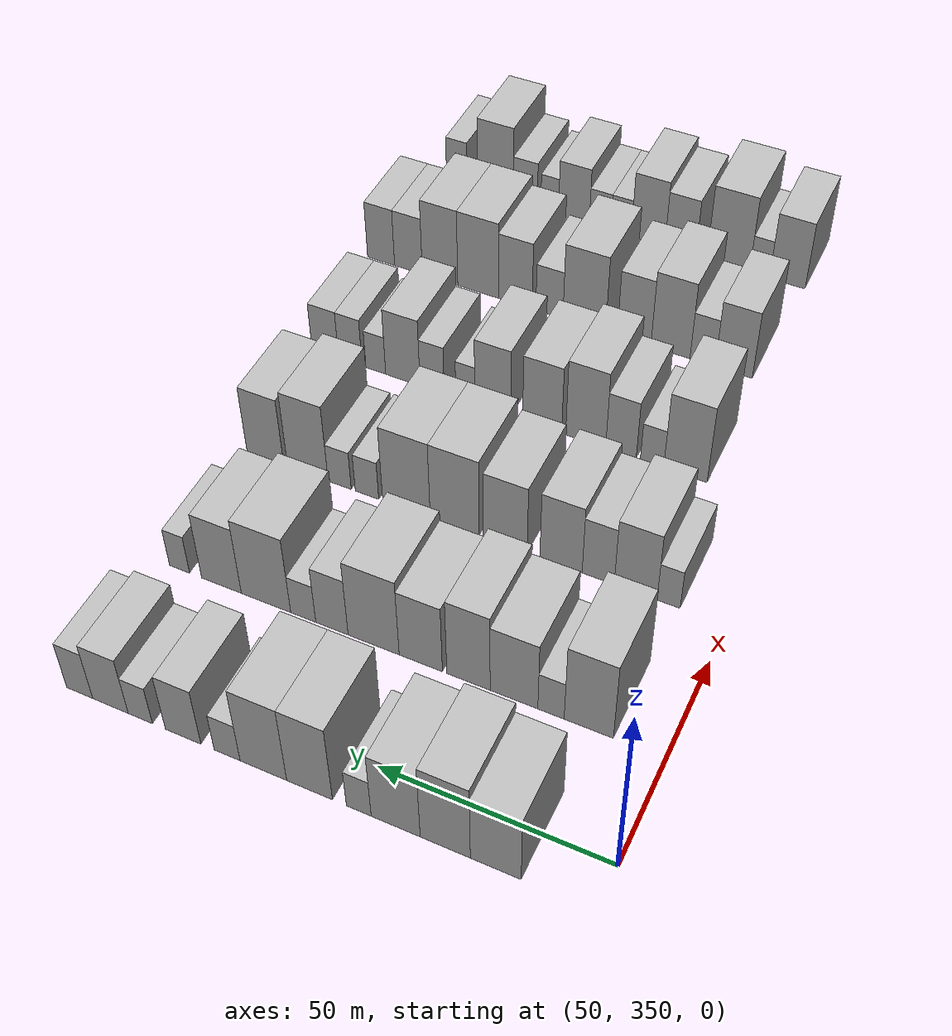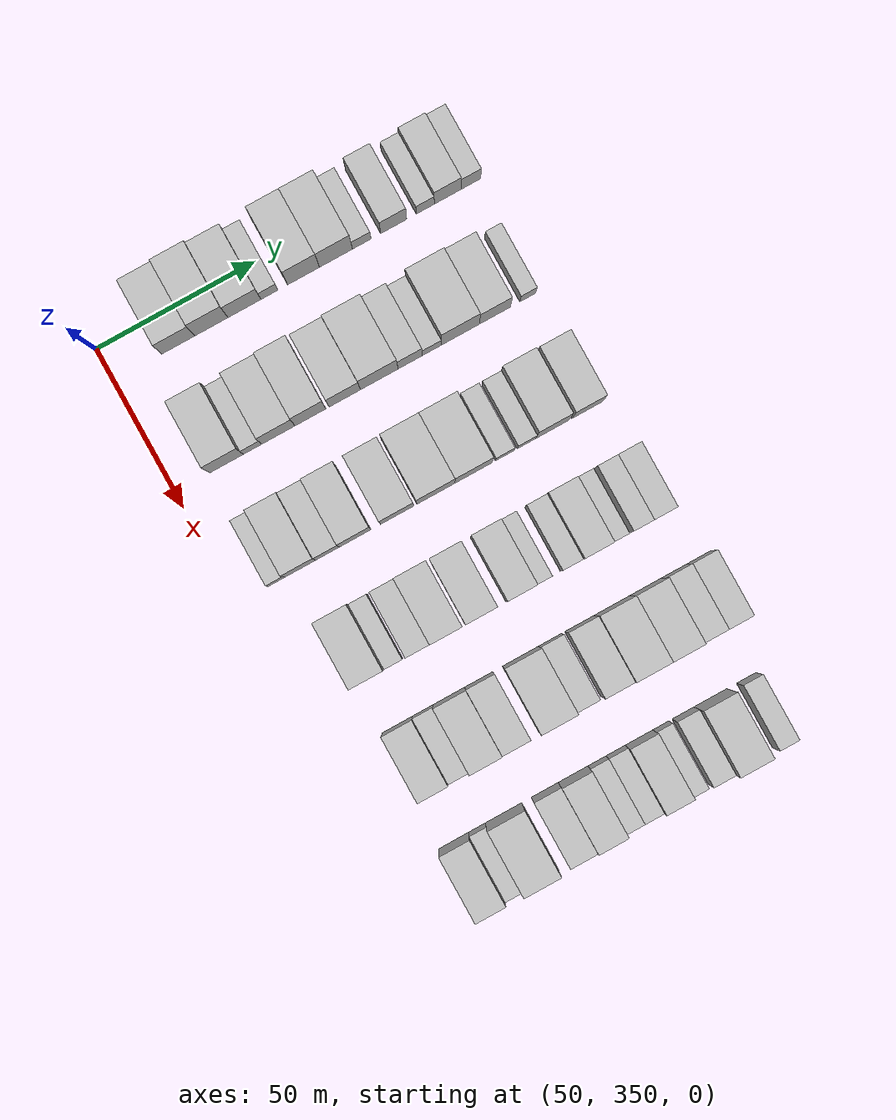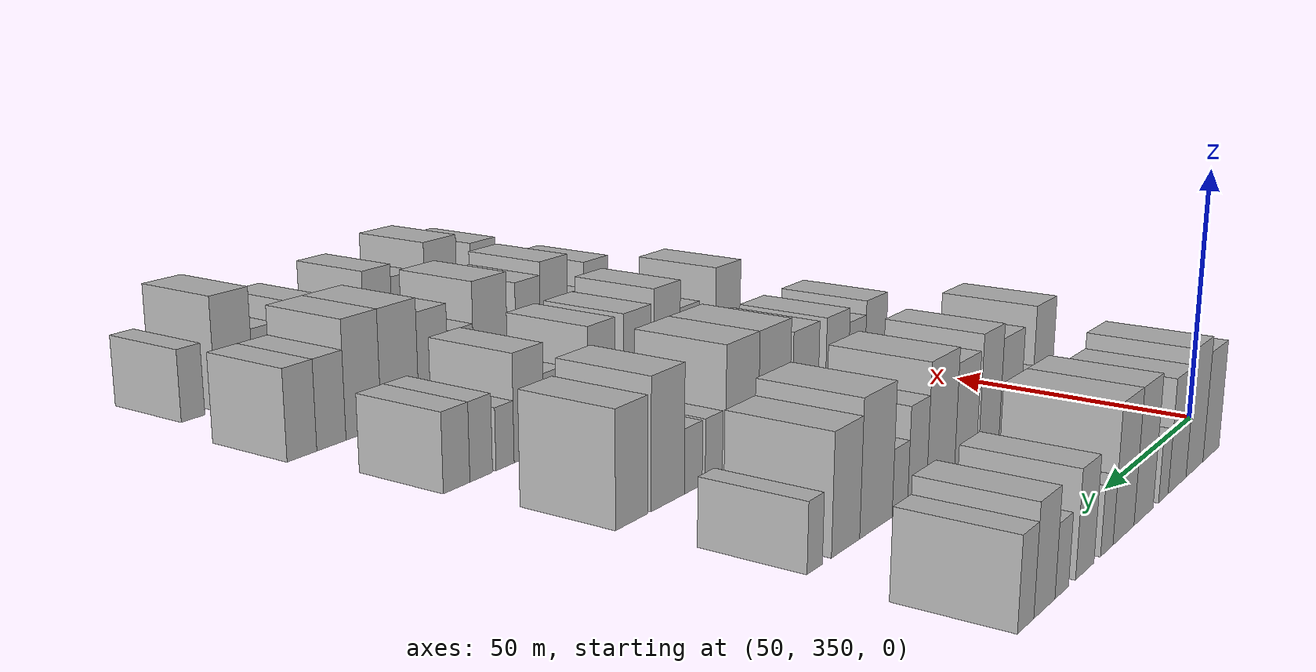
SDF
<sdf version="1.6">
 <world name="default">
  <model name="building_103">
   <static>1</static>
   <pose>50.0000 370.3926 0 0.000000 0.000000 0.000000</pose>
   <link name="link">
    <pose>0 0 10.50 0 0 0</pose>
    <collision name="collision"><geometry><box><size>20.0000 10.3341 21.0000</size></box></geometry></collision>
    <visual name="visual">
     <cast_shadows>0</cast_shadows>
     <geometry><box><size>20.0000 10.3341 21.0000</size></box></geometry>
     <material>
      <script>
       <uri>model://HANNAS_wall/materials/scripts</uri>
       <uri>model://HANNAS_wall/materials/textures</uri>
       <name>vrc/HANNAS_wall</name>
      </script>
     </material>
    </visual>
   </link>
  </model>
  <model name="building_104">
   <static>1</static>
   <pose>50.0000 380.7509 0 0.000000 0.000000 0.000000</pose>
   <link name="link">
    <pose>0 0 12.00 0 0 0</pose>
    <collision name="collision"><geometry><box><size>20.0000 10.3825 24.0000</size></box></geometry></collision>
    <visual name="visual">
     <cast_shadows>0</cast_shadows>
     <geometry><box><size>20.0000 10.3825 24.0000</size></box></geometry>
     <material>
      <script>
       <uri>model://HANNAS_wall/materials/scripts</uri>
       <uri>model://HANNAS_wall/materials/textures</uri>
       <name>vrc/HANNAS_wall</name>
      </script>
     </material>
    </visual>
   </link>
  </model>
  <model name="building_105">
   <static>1</static>
   <pose>50.0000 391.1182 0 0.000000 0.000000 0.000000</pose>
   <link name="link">
    <pose>0 0 10.50 0 0 0</pose>
    <collision name="collision"><geometry><box><size>20.0000 10.3522 21.0000</size></box></geometry></collision>
    <visual name="visual">
     <cast_shadows>0</cast_shadows>
     <geometry><box><size>20.0000 10.3522 21.0000</size></box></geometry>
     <material>
      <script>
       <uri>model://HANNAS_wall/materials/scripts</uri>
       <uri>model://HANNAS_wall/materials/textures</uri>
       <name>vrc/HANNAS_wall</name>
      </script>
     </material>
    </visual>
   </link>
  </model>
  <model name="building_106">
   <static>1</static>
   <pose>50.0000 398.9512 0 0.000000 0.000000 0.000000</pose>
   <link name="link">
    <pose>0 0 6.00 0 0 0</pose>
    <collision name="collision"><geometry><box><size>20.0000 5.3138 12.0000</size></box></geometry></collision>
    <visual name="visual">
     <cast_shadows>0</cast_shadows>
     <geometry><box><size>20.0000 5.3138 12.0000</size></box></geometry>
     <material>
      <script>
       <uri>model://HANNAS_wall/materials/scripts</uri>
       <uri>model://HANNAS_wall/materials/textures</uri>
       <name>vrc/HANNAS_wall</name>
      </script>
     </material>
    </visual>
   </link>
  </model>
  <model name="building_107">
   <static>1</static>
   <pose>50.0000 409.6100 0 0.000000 0.000000 0.000000</pose>
   <link name="link">
    <pose>0 0 12.00 0 0 0</pose>
    <collision name="collision"><geometry><box><size>20.0000 10.0038 24.0000</size></box></geometry></collision>
    <visual name="visual">
     <cast_shadows>0</cast_shadows>
     <geometry><box><size>20.0000 10.0038 24.0000</size></box></geometry>
     <material>
      <script>
       <uri>model://HANNAS_wall/materials/scripts</uri>
       <uri>model://HANNAS_wall/materials/textures</uri>
       <name>vrc/HANNAS_wall</name>
      </script>
     </material>
    </visual>
   </link>
  </model>
  <model name="building_108">
   <static>1</static>
   <pose>50.0000 419.7902 0 0.000000 0.000000 0.000000</pose>
   <link name="link">
    <pose>0 0 12.00 0 0 0</pose>
    <collision name="collision"><geometry><box><size>20.0000 10.3567 24.0000</size></box></geometry></collision>
    <visual name="visual">
     <cast_shadows>0</cast_shadows>
     <geometry><box><size>20.0000 10.3567 24.0000</size></box></geometry>
     <material>
      <script>
       <uri>model://HANNAS_wall/materials/scripts</uri>
       <uri>model://HANNAS_wall/materials/textures</uri>
       <name>vrc/HANNAS_wall</name>
      </script>
     </material>
    </visual>
   </link>
  </model>
  <model name="building_109">
   <static>1</static>
   <pose>50.0000 427.8893 0 0.000000 0.000000 0.000000</pose>
   <link name="link">
    <pose>0 0 6.00 0 0 0</pose>
    <collision name="collision"><geometry><box><size>20.0000 5.8415 12.0000</size></box></geometry></collision>
    <visual name="visual">
     <cast_shadows>0</cast_shadows>
     <geometry><box><size>20.0000 5.8415 12.0000</size></box></geometry>
     <material>
      <script>
       <uri>model://HANNAS_wall/materials/scripts</uri>
       <uri>model://HANNAS_wall/materials/textures</uri>
       <name>vrc/HANNAS_wall</name>
      </script>
     </material>
    </visual>
   </link>
  </model>
  <model name="building_110">
   <static>1</static>
   <pose>50.0000 437.8871 0 0.000000 0.000000 0.000000</pose>
   <link name="link">
    <pose>0 0 9.00 0 0 0</pose>
    <collision name="collision"><geometry><box><size>20.0000 8.1540 18.0000</size></box></geometry></collision>
    <visual name="visual">
     <cast_shadows>0</cast_shadows>
     <geometry><box><size>20.0000 8.1540 18.0000</size></box></geometry>
     <material>
      <script>
       <uri>model://HANNAS_wall/materials/scripts</uri>
       <uri>model://HANNAS_wall/materials/textures</uri>
       <name>vrc/HANNAS_wall</name>
      </script>
     </material>
    </visual>
   </link>
  </model>
  <model name="building_111">
   <static>1</static>
   <pose>50.0000 447.7942 0 0.000000 0.000000 0.000000</pose>
   <link name="link">
    <pose>0 0 6.00 0 0 0</pose>
    <collision name="collision"><geometry><box><size>20.0000 5.6601 12.0000</size></box></geometry></collision>
    <visual name="visual">
     <cast_shadows>0</cast_shadows>
     <geometry><box><size>20.0000 5.6601 12.0000</size></box></geometry>
     <material>
      <script>
       <uri>model://HANNAS_wall/materials/scripts</uri>
       <uri>model://HANNAS_wall/materials/textures</uri>
       <name>vrc/HANNAS_wall</name>
      </script>
     </material>
    </visual>
   </link>
  </model>
  <model name="building_112">
   <static>1</static>
   <pose>50.0000 454.8198 0 0.000000 0.000000 0.000000</pose>
   <link name="link">
    <pose>0 0 9.00 0 0 0</pose>
    <collision name="collision"><geometry><box><size>20.0000 8.3912 18.0000</size></box></geometry></collision>
    <visual name="visual">
     <cast_shadows>0</cast_shadows>
     <geometry><box><size>20.0000 8.3912 18.0000</size></box></geometry>
     <material>
      <script>
       <uri>model://HANNAS_wall/materials/scripts</uri>
       <uri>model://HANNAS_wall/materials/textures</uri>
       <name>vrc/HANNAS_wall</name>
      </script>
     </material>
    </visual>
   </link>
  </model>
  <model name="building_113">
   <static>1</static>
   <pose>50.0000 462.1047 0 0.000000 0.000000 0.000000</pose>
   <link name="link">
    <pose>0 0 7.50 0 0 0</pose>
    <collision name="collision"><geometry><box><size>20.0000 6.1785 15.0000</size></box></geometry></collision>
    <visual name="visual">
     <cast_shadows>0</cast_shadows>
     <geometry><box><size>20.0000 6.1785 15.0000</size></box></geometry>
     <material>
      <script>
       <uri>model://HANNAS_wall/materials/scripts</uri>
       <uri>model://HANNAS_wall/materials/textures</uri>
       <name>vrc/HANNAS_wall</name>
      </script>
     </material>
    </visual>
   </link>
  </model>
  <model name="building_224">
   <static>1</static>
   <pose>85.0000 366.3301 0 0.000000 0.000000 0.000000</pose>
   <link name="link">
    <pose>0 0 12.00 0 0 0</pose>
    <collision name="collision"><geometry><box><size>20.0000 10.5094 24.0000</size></box></geometry></collision>
    <visual name="visual">
     <cast_shadows>0</cast_shadows>
     <geometry><box><size>20.0000 10.5094 24.0000</size></box></geometry>
     <material>
      <script>
       <uri>model://HANNAS_wall/materials/scripts</uri>
       <uri>model://HANNAS_wall/materials/textures</uri>
       <name>vrc/HANNAS_wall</name>
      </script>
     </material>
    </visual>
   </link>
  </model>
  <model name="building_225">
   <static>1</static>
   <pose>85.0000 374.4273 0 0.000000 0.000000 0.000000</pose>
   <link name="link">
    <pose>0 0 6.00 0 0 0</pose>
    <collision name="collision"><geometry><box><size>20.0000 5.6850 12.0000</size></box></geometry></collision>
    <visual name="visual">
     <cast_shadows>0</cast_shadows>
     <geometry><box><size>20.0000 5.6850 12.0000</size></box></geometry>
     <material>
      <script>
       <uri>model://HANNAS_wall/materials/scripts</uri>
       <uri>model://HANNAS_wall/materials/textures</uri>
       <name>vrc/HANNAS_wall</name>
      </script>
     </material>
    </visual>
   </link>
  </model>
  <model name="building_226">
   <static>1</static>
   <pose>85.0000 382.4957 0 0.000000 0.000000 0.000000</pose>
   <link name="link">
    <pose>0 0 10.50 0 0 0</pose>
    <collision name="collision"><geometry><box><size>20.0000 10.4518 21.0000</size></box></geometry></collision>
    <visual name="visual">
     <cast_shadows>0</cast_shadows>
     <geometry><box><size>20.0000 10.4518 21.0000</size></box></geometry>
     <material>
      <script>
       <uri>model://HANNAS_wall/materials/scripts</uri>
       <uri>model://HANNAS_wall/materials/textures</uri>
       <name>vrc/HANNAS_wall</name>
      </script>
     </material>
    </visual>
   </link>
  </model>
  <model name="building_227">
   <static>1</static>
   <pose>85.0000 392.5391 0 0.000000 0.000000 0.000000</pose>
   <link name="link">
    <pose>0 0 12.00 0 0 0</pose>
    <collision name="collision"><geometry><box><size>20.0000 9.6349 24.0000</size></box></geometry></collision>
    <visual name="visual">
     <cast_shadows>0</cast_shadows>
     <geometry><box><size>20.0000 9.6349 24.0000</size></box></geometry>
     <material>
      <script>
       <uri>model://HANNAS_wall/materials/scripts</uri>
       <uri>model://HANNAS_wall/materials/textures</uri>
       <name>vrc/HANNAS_wall</name>
      </script>
     </material>
    </visual>
   </link>
  </model>
  <model name="building_228">
   <static>1</static>
   <pose>85.0000 403.2613 0 0.000000 0.000000 0.000000</pose>
   <link name="link">
    <pose>0 0 10.50 0 0 0</pose>
    <collision name="collision"><geometry><box><size>20.0000 9.8096 21.0000</size></box></geometry></collision>
    <visual name="visual">
     <cast_shadows>0</cast_shadows>
     <geometry><box><size>20.0000 9.8096 21.0000</size></box></geometry>
     <material>
      <script>
       <uri>model://HANNAS_wall/materials/scripts</uri>
       <uri>model://HANNAS_wall/materials/textures</uri>
       <name>vrc/HANNAS_wall</name>
      </script>
     </material>
    </visual>
   </link>
  </model>
  <model name="building_229">
   <static>1</static>
   <pose>85.0000 414.0581 0 0.000000 0.000000 0.000000</pose>
   <link name="link">
    <pose>0 0 12.00 0 0 0</pose>
    <collision name="collision"><geometry><box><size>20.0000 11.7840 24.0000</size></box></geometry></collision>
    <visual name="visual">
     <cast_shadows>0</cast_shadows>
     <geometry><box><size>20.0000 11.7840 24.0000</size></box></geometry>
     <material>
      <script>
       <uri>model://HANNAS_wall/materials/scripts</uri>
       <uri>model://HANNAS_wall/materials/textures</uri>
       <name>vrc/HANNAS_wall</name>
      </script>
     </material>
    </visual>
   </link>
  </model>
  <model name="building_230">
   <static>1</static>
   <pose>85.0000 423.7459 0 0.000000 0.000000 0.000000</pose>
   <link name="link">
    <pose>0 0 9.00 0 0 0</pose>
    <collision name="collision"><geometry><box><size>20.0000 7.5915 18.0000</size></box></geometry></collision>
    <visual name="visual">
     <cast_shadows>0</cast_shadows>
     <geometry><box><size>20.0000 7.5915 18.0000</size></box></geometry>
     <material>
      <script>
       <uri>model://HANNAS_wall/materials/scripts</uri>
       <uri>model://HANNAS_wall/materials/textures</uri>
       <name>vrc/HANNAS_wall</name>
      </script>
     </material>
    </visual>
   </link>
  </model>
  <model name="building_231">
   <static>1</static>
   <pose>85.0000 430.5178 0 0.000000 0.000000 0.000000</pose>
   <link name="link">
    <pose>0 0 6.00 0 0 0</pose>
    <collision name="collision"><geometry><box><size>20.0000 5.9522 12.0000</size></box></geometry></collision>
    <visual name="visual">
     <cast_shadows>0</cast_shadows>
     <geometry><box><size>20.0000 5.9522 12.0000</size></box></geometry>
     <material>
      <script>
       <uri>model://HANNAS_wall/materials/scripts</uri>
       <uri>model://HANNAS_wall/materials/textures</uri>
       <name>vrc/HANNAS_wall</name>
      </script>
     </material>
    </visual>
   </link>
  </model>
  <model name="building_232">
   <static>1</static>
   <pose>85.0000 439.4502 0 0.000000 0.000000 0.000000</pose>
   <link name="link">
    <pose>0 0 12.00 0 0 0</pose>
    <collision name="collision"><geometry><box><size>20.0000 11.9126 24.0000</size></box></geometry></collision>
    <visual name="visual">
     <cast_shadows>0</cast_shadows>
     <geometry><box><size>20.0000 11.9126 24.0000</size></box></geometry>
     <material>
      <script>
       <uri>model://HANNAS_wall/materials/scripts</uri>
       <uri>model://HANNAS_wall/materials/textures</uri>
       <name>vrc/HANNAS_wall</name>
      </script>
     </material>
    </visual>
   </link>
  </model>
  <model name="building_233">
   <static>1</static>
   <pose>85.0000 450.2658 0 0.000000 0.000000 0.000000</pose>
   <link name="link">
    <pose>0 0 10.50 0 0 0</pose>
    <collision name="collision"><geometry><box><size>20.0000 9.7187 21.0000</size></box></geometry></collision>
    <visual name="visual">
     <cast_shadows>0</cast_shadows>
     <geometry><box><size>20.0000 9.7187 21.0000</size></box></geometry>
     <material>
      <script>
       <uri>model://HANNAS_wall/materials/scripts</uri>
       <uri>model://HANNAS_wall/materials/textures</uri>
       <name>vrc/HANNAS_wall</name>
      </script>
     </material>
    </visual>
   </link>
  </model>
  <model name="building_234">
   <static>1</static>
   <pose>85.0000 460.6152 0 0.000000 0.000000 0.000000</pose>
   <link name="link">
    <pose>0 0 6.00 0 0 0</pose>
    <collision name="collision"><geometry><box><size>20.0000 4.9800 12.0000</size></box></geometry></collision>
    <visual name="visual">
     <cast_shadows>0</cast_shadows>
     <geometry><box><size>20.0000 4.9800 12.0000</size></box></geometry>
     <material>
      <script>
       <uri>model://HANNAS_wall/materials/scripts</uri>
       <uri>model://HANNAS_wall/materials/textures</uri>
       <name>vrc/HANNAS_wall</name>
      </script>
     </material>
    </visual>
   </link>
  </model>
  <model name="building_352">
   <static>1</static>
   <pose>120.0000 362.7695 0 0.000000 0.000000 0.000000</pose>
   <link name="link">
    <pose>0 0 6.00 0 0 0</pose>
    <collision name="collision"><geometry><box><size>20.0000 5.1886 12.0000</size></box></geometry></collision>
    <visual name="visual">
     <cast_shadows>0</cast_shadows>
     <geometry><box><size>20.0000 5.1886 12.0000</size></box></geometry>
     <material>
      <script>
       <uri>model://HANNAS_wall/materials/scripts</uri>
       <uri>model://HANNAS_wall/materials/textures</uri>
       <name>vrc/HANNAS_wall</name>
      </script>
     </material>
    </visual>
   </link>
  </model>
  <model name="building_353">
   <static>1</static>
   <pose>120.0000 370.1962 0 0.000000 0.000000 0.000000</pose>
   <link name="link">
    <pose>0 0 10.50 0 0 0</pose>
    <collision name="collision"><geometry><box><size>20.0000 9.6648 21.0000</size></box></geometry></collision>
    <visual name="visual">
     <cast_shadows>0</cast_shadows>
     <geometry><box><size>20.0000 9.6648 21.0000</size></box></geometry>
     <material>
      <script>
       <uri>model://HANNAS_wall/materials/scripts</uri>
       <uri>model://HANNAS_wall/materials/textures</uri>
       <name>vrc/HANNAS_wall</name>
      </script>
     </material>
    </visual>
   </link>
  </model>
  <model name="building_354">
   <static>1</static>
   <pose>120.0000 378.7000 0 0.000000 0.000000 0.000000</pose>
   <link name="link">
    <pose>0 0 9.00 0 0 0</pose>
    <collision name="collision"><geometry><box><size>20.0000 7.3428 18.0000</size></box></geometry></collision>
    <visual name="visual">
     <cast_shadows>0</cast_shadows>
     <geometry><box><size>20.0000 7.3428 18.0000</size></box></geometry>
     <material>
      <script>
       <uri>model://HANNAS_wall/materials/scripts</uri>
       <uri>model://HANNAS_wall/materials/textures</uri>
       <name>vrc/HANNAS_wall</name>
      </script>
     </material>
    </visual>
   </link>
  </model>
  <model name="building_355">
   <static>1</static>
   <pose>120.0000 387.2650 0 0.000000 0.000000 0.000000</pose>
   <link name="link">
    <pose>0 0 10.50 0 0 0</pose>
    <collision name="collision"><geometry><box><size>20.0000 9.7872 21.0000</size></box></geometry></collision>
    <visual name="visual">
     <cast_shadows>0</cast_shadows>
     <geometry><box><size>20.0000 9.7872 21.0000</size></box></geometry>
     <material>
      <script>
       <uri>model://HANNAS_wall/materials/scripts</uri>
       <uri>model://HANNAS_wall/materials/textures</uri>
       <name>vrc/HANNAS_wall</name>
      </script>
     </material>
    </visual>
   </link>
  </model>
  <model name="building_356">
   <static>1</static>
   <pose>120.0000 400.3361 0 0.000000 0.000000 0.000000</pose>
   <link name="link">
    <pose>0 0 10.50 0 0 0</pose>
    <collision name="collision"><geometry><box><size>20.0000 10.3551 21.0000</size></box></geometry></collision>
    <visual name="visual">
     <cast_shadows>0</cast_shadows>
     <geometry><box><size>20.0000 10.3551 21.0000</size></box></geometry>
     <material>
      <script>
       <uri>model://HANNAS_wall/materials/scripts</uri>
       <uri>model://HANNAS_wall/materials/textures</uri>
       <name>vrc/HANNAS_wall</name>
      </script>
     </material>
    </visual>
   </link>
  </model>
  <model name="building_357">
   <static>1</static>
   <pose>120.0000 412.4262 0 0.000000 0.000000 0.000000</pose>
   <link name="link">
    <pose>0 0 12.00 0 0 0</pose>
    <collision name="collision"><geometry><box><size>20.0000 11.8251 24.0000</size></box></geometry></collision>
    <visual name="visual">
     <cast_shadows>0</cast_shadows>
     <geometry><box><size>20.0000 11.8251 24.0000</size></box></geometry>
     <material>
      <script>
       <uri>model://HANNAS_wall/materials/scripts</uri>
       <uri>model://HANNAS_wall/materials/textures</uri>
       <name>vrc/HANNAS_wall</name>
      </script>
     </material>
    </visual>
   </link>
  </model>
  <model name="building_358">
   <static>1</static>
   <pose>120.0000 424.1845 0 0.000000 0.000000 0.000000</pose>
   <link name="link">
    <pose>0 0 12.00 0 0 0</pose>
    <collision name="collision"><geometry><box><size>20.0000 11.6916 24.0000</size></box></geometry></collision>
    <visual name="visual">
     <cast_shadows>0</cast_shadows>
     <geometry><box><size>20.0000 11.6916 24.0000</size></box></geometry>
     <material>
      <script>
       <uri>model://HANNAS_wall/materials/scripts</uri>
       <uri>model://HANNAS_wall/materials/textures</uri>
       <name>vrc/HANNAS_wall</name>
      </script>
     </material>
    </visual>
   </link>
  </model>
  <model name="building_359">
   <static>1</static>
   <pose>120.0000 433.9550 0 0.000000 0.000000 0.000000</pose>
   <link name="link">
    <pose>0 0 6.00 0 0 0</pose>
    <collision name="collision"><geometry><box><size>20.0000 5.8495 12.0000</size></box></geometry></collision>
    <visual name="visual">
     <cast_shadows>0</cast_shadows>
     <geometry><box><size>20.0000 5.8495 12.0000</size></box></geometry>
     <material>
      <script>
       <uri>model://HANNAS_wall/materials/scripts</uri>
       <uri>model://HANNAS_wall/materials/textures</uri>
       <name>vrc/HANNAS_wall</name>
      </script>
     </material>
    </visual>
   </link>
  </model>
  <model name="building_360">
   <static>1</static>
   <pose>120.0000 440.7997 0 0.000000 0.000000 0.000000</pose>
   <link name="link">
    <pose>0 0 6.00 0 0 0</pose>
    <collision name="collision"><geometry><box><size>20.0000 5.8399 12.0000</size></box></geometry></collision>
    <visual name="visual">
     <cast_shadows>0</cast_shadows>
     <geometry><box><size>20.0000 5.8399 12.0000</size></box></geometry>
     <material>
      <script>
       <uri>model://HANNAS_wall/materials/scripts</uri>
       <uri>model://HANNAS_wall/materials/textures</uri>
       <name>vrc/HANNAS_wall</name>
      </script>
     </material>
    </visual>
   </link>
  </model>
  <model name="building_361">
   <static>1</static>
   <pose>120.0000 448.8978 0 0.000000 0.000000 0.000000</pose>
   <link name="link">
    <pose>0 0 12.00 0 0 0</pose>
    <collision name="collision"><geometry><box><size>20.0000 10.3561 24.0000</size></box></geometry></collision>
    <visual name="visual">
     <cast_shadows>0</cast_shadows>
     <geometry><box><size>20.0000 10.3561 24.0000</size></box></geometry>
     <material>
      <script>
       <uri>model://HANNAS_wall/materials/scripts</uri>
       <uri>model://HANNAS_wall/materials/textures</uri>
       <name>vrc/HANNAS_wall</name>
      </script>
     </material>
    </visual>
   </link>
  </model>
  <model name="building_362">
   <static>1</static>
   <pose>120.0000 459.8407 0 0.000000 0.000000 0.000000</pose>
   <link name="link">
    <pose>0 0 10.50 0 0 0</pose>
    <collision name="collision"><geometry><box><size>20.0000 9.5296 21.0000</size></box></geometry></collision>
    <visual name="visual">
     <cast_shadows>0</cast_shadows>
     <geometry><box><size>20.0000 9.5296 21.0000</size></box></geometry>
     <material>
      <script>
       <uri>model://HANNAS_wall/materials/scripts</uri>
       <uri>model://HANNAS_wall/materials/textures</uri>
       <name>vrc/HANNAS_wall</name>
      </script>
     </material>
    </visual>
   </link>
  </model>
  <model name="building_474">
   <static>1</static>
   <pose>155.0000 371.9877 0 0.000000 0.000000 0.000000</pose>
   <link name="link">
    <pose>0 0 12.00 0 0 0</pose>
    <collision name="collision"><geometry><box><size>20.0000 10.3477 24.0000</size></box></geometry></collision>
    <visual name="visual">
     <cast_shadows>0</cast_shadows>
     <geometry><box><size>20.0000 10.3477 24.0000</size></box></geometry>
     <material>
      <script>
       <uri>model://HANNAS_wall/materials/scripts</uri>
       <uri>model://HANNAS_wall/materials/textures</uri>
       <name>vrc/HANNAS_wall</name>
      </script>
     </material>
    </visual>
   </link>
  </model>
  <model name="building_475">
   <static>1</static>
   <pose>155.0000 379.9737 0 0.000000 0.000000 0.000000</pose>
   <link name="link">
    <pose>0 0 6.00 0 0 0</pose>
    <collision name="collision"><geometry><box><size>20.0000 5.6244 12.0000</size></box></geometry></collision>
    <visual name="visual">
     <cast_shadows>0</cast_shadows>
     <geometry><box><size>20.0000 5.6244 12.0000</size></box></geometry>
     <material>
      <script>
       <uri>model://HANNAS_wall/materials/scripts</uri>
       <uri>model://HANNAS_wall/materials/textures</uri>
       <name>vrc/HANNAS_wall</name>
      </script>
     </material>
    </visual>
   </link>
  </model>
  <model name="building_476">
   <static>1</static>
   <pose>155.0000 387.5056 0 0.000000 0.000000 0.000000</pose>
   <link name="link">
    <pose>0 0 9.00 0 0 0</pose>
    <collision name="collision"><geometry><box><size>20.0000 7.4394 18.0000</size></box></geometry></collision>
    <visual name="visual">
     <cast_shadows>0</cast_shadows>
     <geometry><box><size>20.0000 7.4394 18.0000</size></box></geometry>
     <material>
      <script>
       <uri>model://HANNAS_wall/materials/scripts</uri>
       <uri>model://HANNAS_wall/materials/textures</uri>
       <name>vrc/HANNAS_wall</name>
      </script>
     </material>
    </visual>
   </link>
  </model>
  <model name="building_477">
   <static>1</static>
   <pose>155.0000 396.1580 0 0.000000 0.000000 0.000000</pose>
   <link name="link">
    <pose>0 0 12.00 0 0 0</pose>
    <collision name="collision"><geometry><box><size>20.0000 9.8654 24.0000</size></box></geometry></collision>
    <visual name="visual">
     <cast_shadows>0</cast_shadows>
     <geometry><box><size>20.0000 9.8654 24.0000</size></box></geometry>
     <material>
      <script>
       <uri>model://HANNAS_wall/materials/scripts</uri>
       <uri>model://HANNAS_wall/materials/textures</uri>
       <name>vrc/HANNAS_wall</name>
      </script>
     </material>
    </visual>
   </link>
  </model>
  <model name="building_478">
   <static>1</static>
   <pose>155.0000 406.9761 0 0.000000 0.000000 0.000000</pose>
   <link name="link">
    <pose>0 0 10.50 0 0 0</pose>
    <collision name="collision"><geometry><box><size>20.0000 9.7708 21.0000</size></box></geometry></collision>
    <visual name="visual">
     <cast_shadows>0</cast_shadows>
     <geometry><box><size>20.0000 9.7708 21.0000</size></box></geometry>
     <material>
      <script>
       <uri>model://HANNAS_wall/materials/scripts</uri>
       <uri>model://HANNAS_wall/materials/textures</uri>
       <name>vrc/HANNAS_wall</name>
      </script>
     </material>
    </visual>
   </link>
  </model>
  <model name="building_479">
   <static>1</static>
   <pose>155.0000 419.4429 0 0.000000 0.000000 0.000000</pose>
   <link name="link">
    <pose>0 0 10.50 0 0 0</pose>
    <collision name="collision"><geometry><box><size>20.0000 9.1630 21.0000</size></box></geometry></collision>
    <visual name="visual">
     <cast_shadows>0</cast_shadows>
     <geometry><box><size>20.0000 9.1630 21.0000</size></box></geometry>
     <material>
      <script>
       <uri>model://HANNAS_wall/materials/scripts</uri>
       <uri>model://HANNAS_wall/materials/textures</uri>
       <name>vrc/HANNAS_wall</name>
      </script>
     </material>
    </visual>
   </link>
  </model>
  <model name="building_480">
   <static>1</static>
   <pose>155.0000 426.4739 0 0.000000 0.000000 0.000000</pose>
   <link name="link">
    <pose>0 0 6.00 0 0 0</pose>
    <collision name="collision"><geometry><box><size>20.0000 4.8989 12.0000</size></box></geometry></collision>
    <visual name="visual">
     <cast_shadows>0</cast_shadows>
     <geometry><box><size>20.0000 4.8989 12.0000</size></box></geometry>
     <material>
      <script>
       <uri>model://HANNAS_wall/materials/scripts</uri>
       <uri>model://HANNAS_wall/materials/textures</uri>
       <name>vrc/HANNAS_wall</name>
      </script>
     </material>
    </visual>
   </link>
  </model>
  <model name="building_481">
   <static>1</static>
   <pose>155.0000 435.0867 0 0.000000 0.000000 0.000000</pose>
   <link name="link">
    <pose>0 0 7.50 0 0 0</pose>
    <collision name="collision"><geometry><box><size>20.0000 6.3268 15.0000</size></box></geometry></collision>
    <visual name="visual">
     <cast_shadows>0</cast_shadows>
     <geometry><box><size>20.0000 6.3268 15.0000</size></box></geometry>
     <material>
      <script>
       <uri>model://HANNAS_wall/materials/scripts</uri>
       <uri>model://HANNAS_wall/materials/textures</uri>
       <name>vrc/HANNAS_wall</name>
      </script>
     </material>
    </visual>
   </link>
  </model>
  <model name="building_482">
   <static>1</static>
   <pose>155.0000 442.7895 0 0.000000 0.000000 0.000000</pose>
   <link name="link">
    <pose>0 0 10.50 0 0 0</pose>
    <collision name="collision"><geometry><box><size>20.0000 9.0788 21.0000</size></box></geometry></collision>
    <visual name="visual">
     <cast_shadows>0</cast_shadows>
     <geometry><box><size>20.0000 9.0788 21.0000</size></box></geometry>
     <material>
      <script>
       <uri>model://HANNAS_wall/materials/scripts</uri>
       <uri>model://HANNAS_wall/materials/textures</uri>
       <name>vrc/HANNAS_wall</name>
      </script>
     </material>
    </visual>
   </link>
  </model>
  <model name="building_483">
   <static>1</static>
   <pose>155.0000 449.9760 0 0.000000 0.000000 0.000000</pose>
   <link name="link">
    <pose>0 0 6.00 0 0 0</pose>
    <collision name="collision"><geometry><box><size>20.0000 5.2941 12.0000</size></box></geometry></collision>
    <visual name="visual">
     <cast_shadows>0</cast_shadows>
     <geometry><box><size>20.0000 5.2941 12.0000</size></box></geometry>
     <material>
      <script>
       <uri>model://HANNAS_wall/materials/scripts</uri>
       <uri>model://HANNAS_wall/materials/textures</uri>
       <name>vrc/HANNAS_wall</name>
      </script>
     </material>
    </visual>
   </link>
  </model>
  <model name="building_484">
   <static>1</static>
   <pose>155.0000 456.7997 0 0.000000 0.000000 0.000000</pose>
   <link name="link">
    <pose>0 0 7.50 0 0 0</pose>
    <collision name="collision"><geometry><box><size>20.0000 6.3534 15.0000</size></box></geometry></collision>
    <visual name="visual">
     <cast_shadows>0</cast_shadows>
     <geometry><box><size>20.0000 6.3534 15.0000</size></box></geometry>
     <material>
      <script>
       <uri>model://HANNAS_wall/materials/scripts</uri>
       <uri>model://HANNAS_wall/materials/textures</uri>
       <name>vrc/HANNAS_wall</name>
      </script>
     </material>
    </visual>
   </link>
  </model>
  <model name="building_485">
   <static>1</static>
   <pose>155.0000 463.5801 0 0.000000 0.000000 0.000000</pose>
   <link name="link">
    <pose>0 0 7.50 0 0 0</pose>
    <collision name="collision"><geometry><box><size>20.0000 7.2073 15.0000</size></box></geometry></collision>
    <visual name="visual">
     <cast_shadows>0</cast_shadows>
     <geometry><box><size>20.0000 7.2073 15.0000</size></box></geometry>
     <material>
      <script>
       <uri>model://HANNAS_wall/materials/scripts</uri>
       <uri>model://HANNAS_wall/materials/textures</uri>
       <name>vrc/HANNAS_wall</name>
      </script>
     </material>
    </visual>
   </link>
  </model>
  <model name="building_597">
   <static>1</static>
   <pose>190.0000 372.7905 0 0.000000 0.000000 0.000000</pose>
   <link name="link">
    <pose>0 0 10.50 0 0 0</pose>
    <collision name="collision"><geometry><box><size>20.0000 9.3067 21.0000</size></box></geometry></collision>
    <visual name="visual">
     <cast_shadows>0</cast_shadows>
     <geometry><box><size>20.0000 9.3067 21.0000</size></box></geometry>
     <material>
      <script>
       <uri>model://HANNAS_wall/materials/scripts</uri>
       <uri>model://HANNAS_wall/materials/textures</uri>
       <name>vrc/HANNAS_wall</name>
      </script>
     </material>
    </visual>
   </link>
  </model>
  <model name="building_598">
   <static>1</static>
   <pose>190.0000 380.6076 0 0.000000 0.000000 0.000000</pose>
   <link name="link">
    <pose>0 0 7.50 0 0 0</pose>
    <collision name="collision"><geometry><box><size>20.0000 6.3274 15.0000</size></box></geometry></collision>
    <visual name="visual">
     <cast_shadows>0</cast_shadows>
     <geometry><box><size>20.0000 6.3274 15.0000</size></box></geometry>
     <material>
      <script>
       <uri>model://HANNAS_wall/materials/scripts</uri>
       <uri>model://HANNAS_wall/materials/textures</uri>
       <name>vrc/HANNAS_wall</name>
      </script>
     </material>
    </visual>
   </link>
  </model>
  <model name="building_599">
   <static>1</static>
   <pose>190.0000 388.7678 0 0.000000 0.000000 0.000000</pose>
   <link name="link">
    <pose>0 0 12.00 0 0 0</pose>
    <collision name="collision"><geometry><box><size>20.0000 9.9931 24.0000</size></box></geometry></collision>
    <visual name="visual">
     <cast_shadows>0</cast_shadows>
     <geometry><box><size>20.0000 9.9931 24.0000</size></box></geometry>
     <material>
      <script>
       <uri>model://HANNAS_wall/materials/scripts</uri>
       <uri>model://HANNAS_wall/materials/textures</uri>
       <name>vrc/HANNAS_wall</name>
      </script>
     </material>
    </visual>
   </link>
  </model>
  <model name="building_600">
   <static>1</static>
   <pose>190.0000 398.1196 0 0.000000 0.000000 0.000000</pose>
   <link name="link">
    <pose>0 0 10.50 0 0 0</pose>
    <collision name="collision"><geometry><box><size>20.0000 8.7105 21.0000</size></box></geometry></collision>
    <visual name="visual">
     <cast_shadows>0</cast_shadows>
     <geometry><box><size>20.0000 8.7105 21.0000</size></box></geometry>
     <material>
      <script>
       <uri>model://HANNAS_wall/materials/scripts</uri>
       <uri>model://HANNAS_wall/materials/textures</uri>
       <name>vrc/HANNAS_wall</name>
      </script>
     </material>
    </visual>
   </link>
  </model>
  <model name="building_601">
   <static>1</static>
   <pose>190.0000 411.1023 0 0.000000 0.000000 0.000000</pose>
   <link name="link">
    <pose>0 0 12.00 0 0 0</pose>
    <collision name="collision"><geometry><box><size>20.0000 11.2549 24.0000</size></box></geometry></collision>
    <visual name="visual">
     <cast_shadows>0</cast_shadows>
     <geometry><box><size>20.0000 11.2549 24.0000</size></box></geometry>
     <material>
      <script>
       <uri>model://HANNAS_wall/materials/scripts</uri>
       <uri>model://HANNAS_wall/materials/textures</uri>
       <name>vrc/HANNAS_wall</name>
      </script>
     </material>
    </visual>
   </link>
  </model>
  <model name="building_602">
   <static>1</static>
   <pose>190.0000 420.3362 0 0.000000 0.000000 0.000000</pose>
   <link name="link">
    <pose>0 0 7.50 0 0 0</pose>
    <collision name="collision"><geometry><box><size>20.0000 7.2129 15.0000</size></box></geometry></collision>
    <visual name="visual">
     <cast_shadows>0</cast_shadows>
     <geometry><box><size>20.0000 7.2129 15.0000</size></box></geometry>
     <material>
      <script>
       <uri>model://HANNAS_wall/materials/scripts</uri>
       <uri>model://HANNAS_wall/materials/textures</uri>
       <name>vrc/HANNAS_wall</name>
      </script>
     </material>
    </visual>
   </link>
  </model>
  <model name="building_603">
   <static>1</static>
   <pose>190.0000 429.5128 0 0.000000 0.000000 0.000000</pose>
   <link name="link">
    <pose>0 0 10.50 0 0 0</pose>
    <collision name="collision"><geometry><box><size>20.0000 9.1403 21.0000</size></box></geometry></collision>
    <visual name="visual">
     <cast_shadows>0</cast_shadows>
     <geometry><box><size>20.0000 9.1403 21.0000</size></box></geometry>
     <material>
      <script>
       <uri>model://HANNAS_wall/materials/scripts</uri>
       <uri>model://HANNAS_wall/materials/textures</uri>
       <name>vrc/HANNAS_wall</name>
      </script>
     </material>
    </visual>
   </link>
  </model>
  <model name="building_604">
   <static>1</static>
   <pose>190.0000 439.6329 0 0.000000 0.000000 0.000000</pose>
   <link name="link">
    <pose>0 0 12.00 0 0 0</pose>
    <collision name="collision"><geometry><box><size>20.0000 11.0999 24.0000</size></box></geometry></collision>
    <visual name="visual">
     <cast_shadows>0</cast_shadows>
     <geometry><box><size>20.0000 11.0999 24.0000</size></box></geometry>
     <material>
      <script>
       <uri>model://HANNAS_wall/materials/scripts</uri>
       <uri>model://HANNAS_wall/materials/textures</uri>
       <name>vrc/HANNAS_wall</name>
      </script>
     </material>
    </visual>
   </link>
  </model>
  <model name="building_605">
   <static>1</static>
   <pose>190.0000 450.1190 0 0.000000 0.000000 0.000000</pose>
   <link name="link">
    <pose>0 0 12.00 0 0 0</pose>
    <collision name="collision"><geometry><box><size>20.0000 9.8721 24.0000</size></box></geometry></collision>
    <visual name="visual">
     <cast_shadows>0</cast_shadows>
     <geometry><box><size>20.0000 9.8721 24.0000</size></box></geometry>
     <material>
      <script>
       <uri>model://HANNAS_wall/materials/scripts</uri>
       <uri>model://HANNAS_wall/materials/textures</uri>
       <name>vrc/HANNAS_wall</name>
      </script>
     </material>
    </visual>
   </link>
  </model>
  <model name="building_606">
   <static>1</static>
   <pose>190.0000 458.9555 0 0.000000 0.000000 0.000000</pose>
   <link name="link">
    <pose>0 0 9.00 0 0 0</pose>
    <collision name="collision"><geometry><box><size>20.0000 7.8009 18.0000</size></box></geometry></collision>
    <visual name="visual">
     <cast_shadows>0</cast_shadows>
     <geometry><box><size>20.0000 7.8009 18.0000</size></box></geometry>
     <material>
      <script>
       <uri>model://HANNAS_wall/materials/scripts</uri>
       <uri>model://HANNAS_wall/materials/textures</uri>
       <name>vrc/HANNAS_wall</name>
      </script>
     </material>
    </visual>
   </link>
  </model>
  <model name="building_607">
   <static>1</static>
   <pose>190.0000 466.6846 0 0.000000 0.000000 0.000000</pose>
   <link name="link">
    <pose>0 0 9.00 0 0 0</pose>
    <collision name="collision"><geometry><box><size>20.0000 7.6573 18.0000</size></box></geometry></collision>
    <visual name="visual">
     <cast_shadows>0</cast_shadows>
     <geometry><box><size>20.0000 7.6573 18.0000</size></box></geometry>
     <material>
      <script>
       <uri>model://HANNAS_wall/materials/scripts</uri>
       <uri>model://HANNAS_wall/materials/textures</uri>
       <name>vrc/HANNAS_wall</name>
      </script>
     </material>
    </visual>
   </link>
  </model>
  <model name="building_723">
   <static>1</static>
   <pose>225.0000 370.8659 0 0.000000 0.000000 0.000000</pose>
   <link name="link">
    <pose>0 0 10.50 0 0 0</pose>
    <collision name="collision"><geometry><box><size>20.0000 9.3033 21.0000</size></box></geometry></collision>
    <visual name="visual">
     <cast_shadows>0</cast_shadows>
     <geometry><box><size>20.0000 9.3033 21.0000</size></box></geometry>
     <material>
      <script>
       <uri>model://HANNAS_wall/materials/scripts</uri>
       <uri>model://HANNAS_wall/materials/textures</uri>
       <name>vrc/HANNAS_wall</name>
      </script>
     </material>
    </visual>
   </link>
  </model>
  <model name="building_724">
   <static>1</static>
   <pose>225.0000 378.1345 0 0.000000 0.000000 0.000000</pose>
   <link name="link">
    <pose>0 0 6.00 0 0 0</pose>
    <collision name="collision"><geometry><box><size>20.0000 5.2340 12.0000</size></box></geometry></collision>
    <visual name="visual">
     <cast_shadows>0</cast_shadows>
     <geometry><box><size>20.0000 5.2340 12.0000</size></box></geometry>
     <material>
      <script>
       <uri>model://HANNAS_wall/materials/scripts</uri>
       <uri>model://HANNAS_wall/materials/textures</uri>
       <name>vrc/HANNAS_wall</name>
      </script>
     </material>
    </visual>
   </link>
  </model>
  <model name="building_725">
   <static>1</static>
   <pose>225.0000 386.4338 0 0.000000 0.000000 0.000000</pose>
   <link name="link">
    <pose>0 0 12.00 0 0 0</pose>
    <collision name="collision"><geometry><box><size>20.0000 11.3646 24.0000</size></box></geometry></collision>
    <visual name="visual">
     <cast_shadows>0</cast_shadows>
     <geometry><box><size>20.0000 11.3646 24.0000</size></box></geometry>
     <material>
      <script>
       <uri>model://HANNAS_wall/materials/scripts</uri>
       <uri>model://HANNAS_wall/materials/textures</uri>
       <name>vrc/HANNAS_wall</name>
      </script>
     </material>
    </visual>
   </link>
  </model>
  <model name="building_726">
   <static>1</static>
   <pose>225.0000 399.2882 0 0.000000 0.000000 0.000000</pose>
   <link name="link">
    <pose>0 0 9.00 0 0 0</pose>
    <collision name="collision"><geometry><box><size>20.0000 8.3441 18.0000</size></box></geometry></collision>
    <visual name="visual">
     <cast_shadows>0</cast_shadows>
     <geometry><box><size>20.0000 8.3441 18.0000</size></box></geometry>
     <material>
      <script>
       <uri>model://HANNAS_wall/materials/scripts</uri>
       <uri>model://HANNAS_wall/materials/textures</uri>
       <name>vrc/HANNAS_wall</name>
      </script>
     </material>
    </visual>
   </link>
  </model>
  <model name="building_727">
   <static>1</static>
   <pose>225.0000 408.0617 0 0.000000 0.000000 0.000000</pose>
   <link name="link">
    <pose>0 0 10.50 0 0 0</pose>
    <collision name="collision"><geometry><box><size>20.0000 9.2030 21.0000</size></box></geometry></collision>
    <visual name="visual">
     <cast_shadows>0</cast_shadows>
     <geometry><box><size>20.0000 9.2030 21.0000</size></box></geometry>
     <material>
      <script>
       <uri>model://HANNAS_wall/materials/scripts</uri>
       <uri>model://HANNAS_wall/materials/textures</uri>
       <name>vrc/HANNAS_wall</name>
      </script>
     </material>
    </visual>
   </link>
  </model>
  <model name="building_728">
   <static>1</static>
   <pose>225.0000 415.4985 0 0.000000 0.000000 0.000000</pose>
   <link name="link">
    <pose>0 0 6.00 0 0 0</pose>
    <collision name="collision"><geometry><box><size>20.0000 5.6705 12.0000</size></box></geometry></collision>
    <visual name="visual">
     <cast_shadows>0</cast_shadows>
     <geometry><box><size>20.0000 5.6705 12.0000</size></box></geometry>
     <material>
      <script>
       <uri>model://HANNAS_wall/materials/scripts</uri>
       <uri>model://HANNAS_wall/materials/textures</uri>
       <name>vrc/HANNAS_wall</name>
      </script>
     </material>
    </visual>
   </link>
  </model>
  <model name="building_729">
   <static>1</static>
   <pose>225.0000 421.3169 0 0.000000 0.000000 0.000000</pose>
   <link name="link">
    <pose>0 0 6.00 0 0 0</pose>
    <collision name="collision"><geometry><box><size>20.0000 5.9663 12.0000</size></box></geometry></collision>
    <visual name="visual">
     <cast_shadows>0</cast_shadows>
     <geometry><box><size>20.0000 5.9663 12.0000</size></box></geometry>
     <material>
      <script>
       <uri>model://HANNAS_wall/materials/scripts</uri>
       <uri>model://HANNAS_wall/materials/textures</uri>
       <name>vrc/HANNAS_wall</name>
      </script>
     </material>
    </visual>
   </link>
  </model>
  <model name="building_730">
   <static>1</static>
   <pose>225.0000 428.6435 0 0.000000 0.000000 0.000000</pose>
   <link name="link">
    <pose>0 0 9.00 0 0 0</pose>
    <collision name="collision"><geometry><box><size>20.0000 8.6869 18.0000</size></box></geometry></collision>
    <visual name="visual">
     <cast_shadows>0</cast_shadows>
     <geometry><box><size>20.0000 8.6869 18.0000</size></box></geometry>
     <material>
      <script>
       <uri>model://HANNAS_wall/materials/scripts</uri>
       <uri>model://HANNAS_wall/materials/textures</uri>
       <name>vrc/HANNAS_wall</name>
      </script>
     </material>
    </visual>
   </link>
  </model>
  <model name="building_731">
   <static>1</static>
   <pose>225.0000 435.4871 0 0.000000 0.000000 0.000000</pose>
   <link name="link">
    <pose>0 0 6.00 0 0 0</pose>
    <collision name="collision"><geometry><box><size>20.0000 5.0003 12.0000</size></box></geometry></collision>
    <visual name="visual">
     <cast_shadows>0</cast_shadows>
     <geometry><box><size>20.0000 5.0003 12.0000</size></box></geometry>
     <material>
      <script>
       <uri>model://HANNAS_wall/materials/scripts</uri>
       <uri>model://HANNAS_wall/materials/textures</uri>
       <name>vrc/HANNAS_wall</name>
      </script>
     </material>
    </visual>
   </link>
  </model>
  <model name="building_732">
   <static>1</static>
   <pose>225.0000 442.4081 0 0.000000 0.000000 0.000000</pose>
   <link name="link">
    <pose>0 0 7.50 0 0 0</pose>
    <collision name="collision"><geometry><box><size>20.0000 6.8416 15.0000</size></box></geometry></collision>
    <visual name="visual">
     <cast_shadows>0</cast_shadows>
     <geometry><box><size>20.0000 6.8416 15.0000</size></box></geometry>
     <material>
      <script>
       <uri>model://HANNAS_wall/materials/scripts</uri>
       <uri>model://HANNAS_wall/materials/textures</uri>
       <name>vrc/HANNAS_wall</name>
      </script>
     </material>
    </visual>
   </link>
  </model>
  <model name="building_733">
   <static>1</static>
   <pose>225.0000 450.9934 0 0.000000 0.000000 0.000000</pose>
   <link name="link">
    <pose>0 0 12.00 0 0 0</pose>
    <collision name="collision"><geometry><box><size>20.0000 10.3291 24.0000</size></box></geometry></collision>
    <visual name="visual">
     <cast_shadows>0</cast_shadows>
     <geometry><box><size>20.0000 10.3291 24.0000</size></box></geometry>
     <material>
      <script>
       <uri>model://HANNAS_wall/materials/scripts</uri>
       <uri>model://HANNAS_wall/materials/textures</uri>
       <name>vrc/HANNAS_wall</name>
      </script>
     </material>
    </visual>
   </link>
  </model>
  <model name="building_734">
   <static>1</static>
   <pose>225.0000 462.1828 0 0.000000 0.000000 0.000000</pose>
   <link name="link">
    <pose>0 0 7.50 0 0 0</pose>
    <collision name="collision"><geometry><box><size>20.0000 6.0497 15.0000</size></box></geometry></collision>
    <visual name="visual">
     <cast_shadows>0</cast_shadows>
     <geometry><box><size>20.0000 6.0497 15.0000</size></box></geometry>
     <material>
      <script>
       <uri>model://HANNAS_wall/materials/scripts</uri>
       <uri>model://HANNAS_wall/materials/textures</uri>
       <name>vrc/HANNAS_wall</name>
      </script>
     </material>
    </visual>
   </link>
  </model>
 </world>
</sdf>
